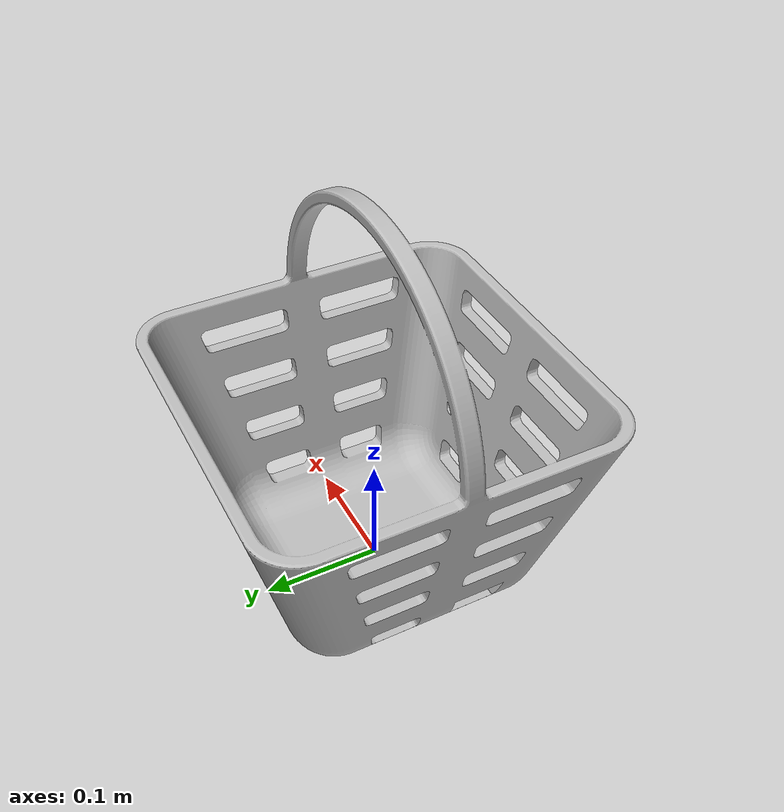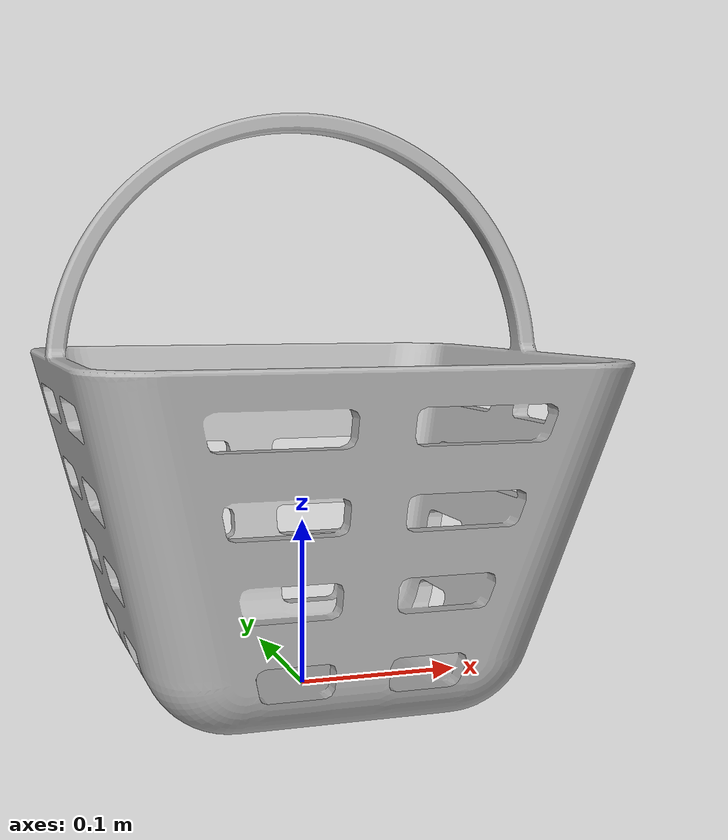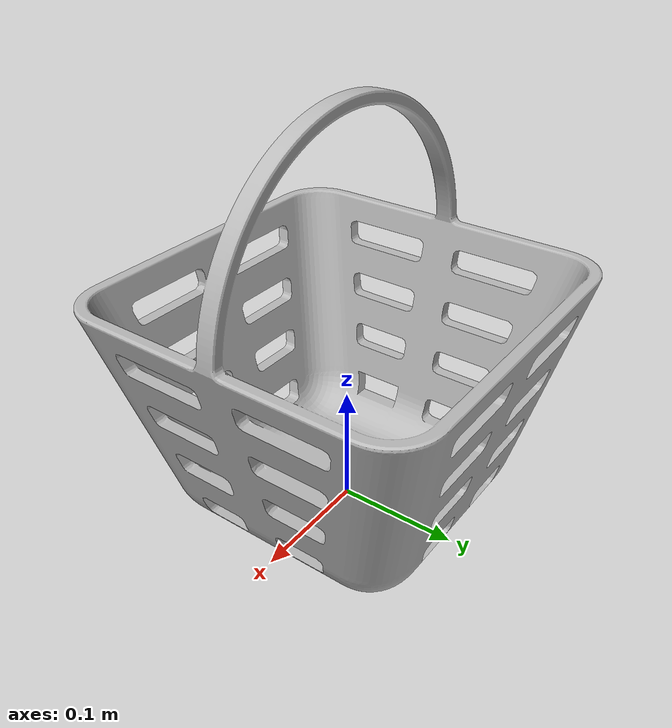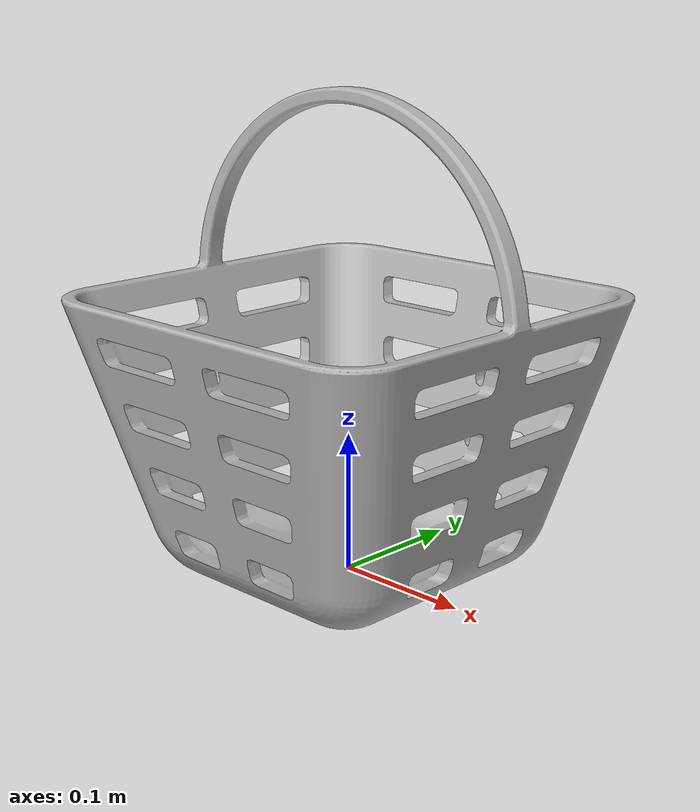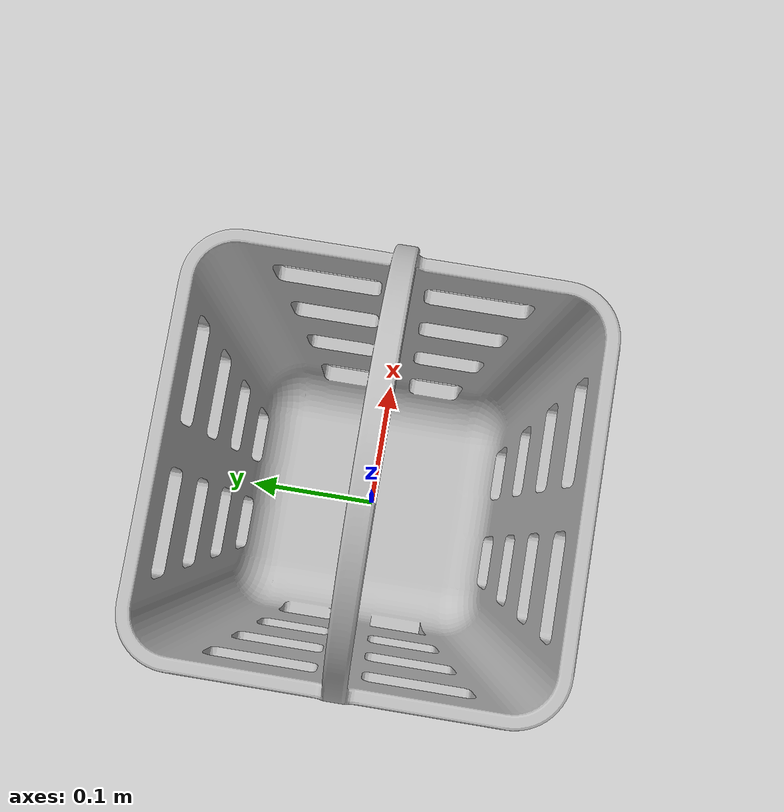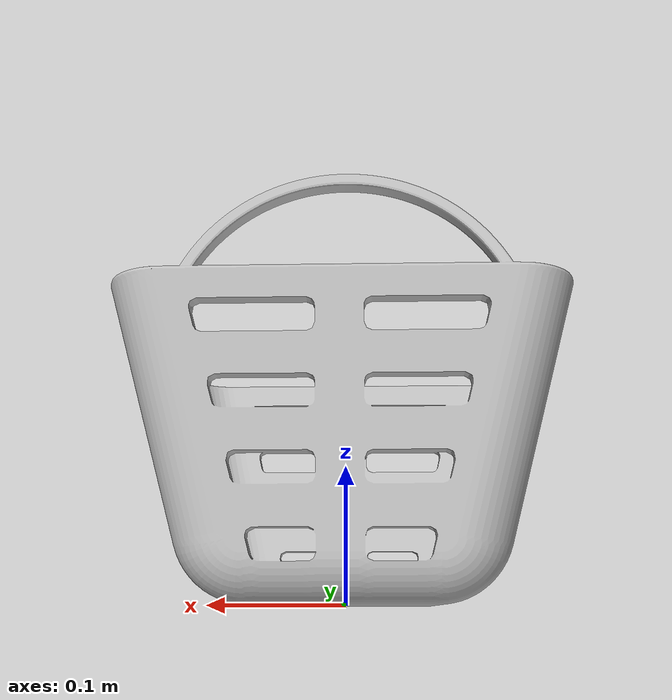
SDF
<?xml version="1.0" ?>
<sdf version="1.4">
  <model name="basket">
    <static>0</static>
    <link name="link">

      <inertial>
        <mass>0.250</mass>
        <inertia>
          <ixx>0.003735</ixx>
          <ixy>0.0</ixy>
          <ixz>0.0</ixz>
          <iyy>0.003735</iyy>
          <iyz>0.0</iyz>
          <izz>0.003735</izz>
        </inertia>
      </inertial>

      <collision name="colision">
        <pose>0 0 0 0 0 0</pose>
          <geometry>
	    <mesh>
              <uri>model://basket/meshes/basket.dae</uri>
	      <scale> 0.001 0.001 0.001 </scale>
            </mesh>
          </geometry>
        <surface>
          <friction>
            <ode>
              <mu>30.0</mu>
              <mu2>30.0</mu2>
              <fdir1>0 0 0</fdir1>
            </ode>
          </friction>
          <contact>
            <ode>
              <kp>1000000.0</kp>
              <kd>100.0</kd>
              <min_depth>0.0025</min_depth>
              <max_vel>1.0</max_vel>
            </ode>
          </contact>
        </surface>
      </collision>

      <visual name="visual1">
        <pose>0 0 0 0 0 0</pose>
        <geometry>
          <mesh>
            <uri>model://basket/meshes/basket.dae</uri>
	    <scale> 0.001 0.001 0.001 </scale>
          </mesh>
        </geometry>
      </visual>

      <velocity_decay>
        <linear>0.000000</linear>
        <angular>0.000000</angular>
      </velocity_decay>
      <self_collide>0</self_collide>
      <kinematic>0</kinematic>
      <gravity>1</gravity>
    </link>
  </model>
</sdf>
